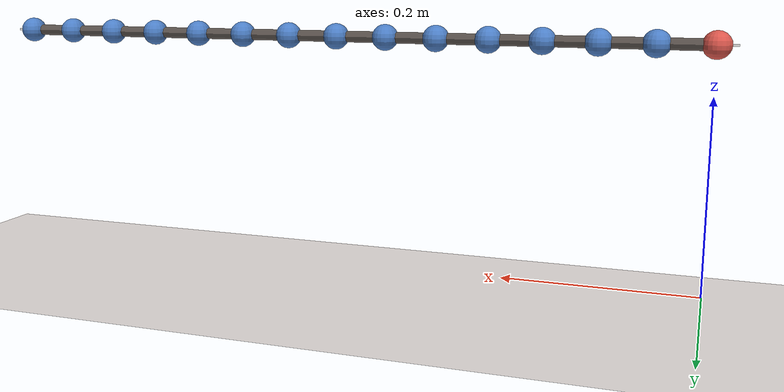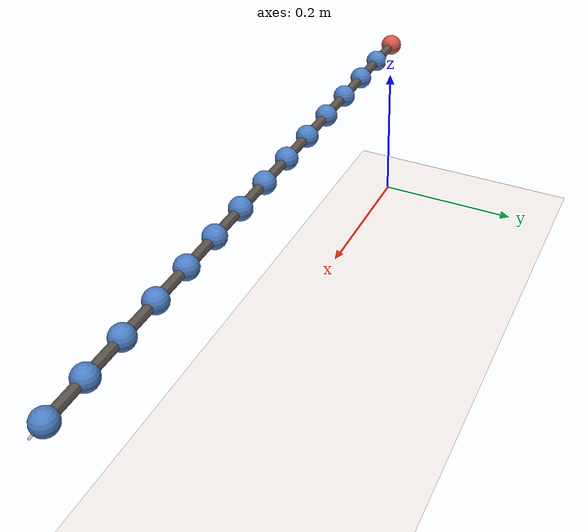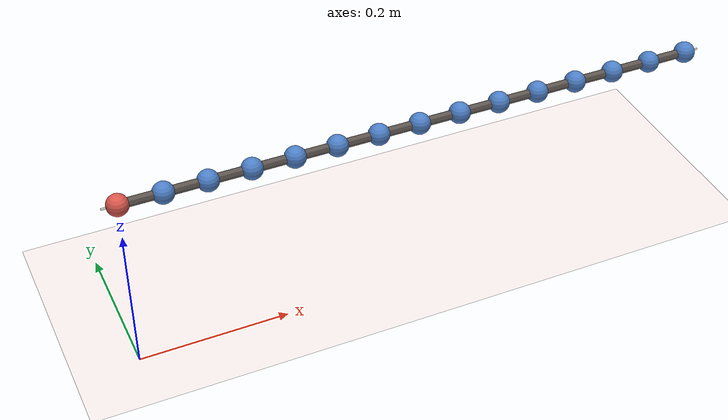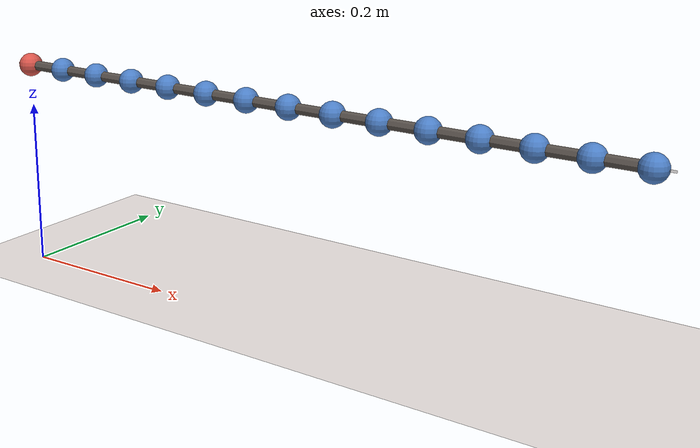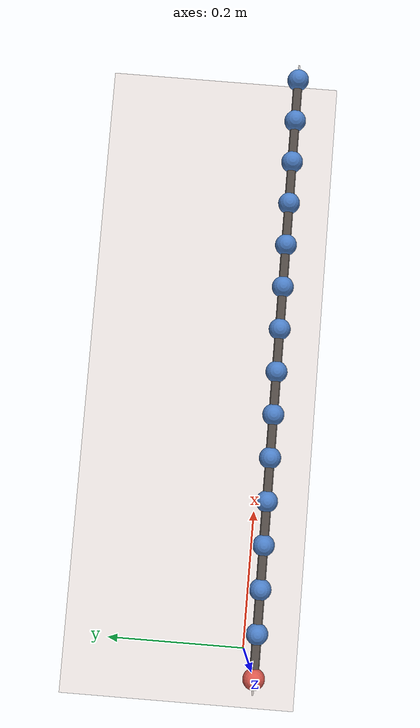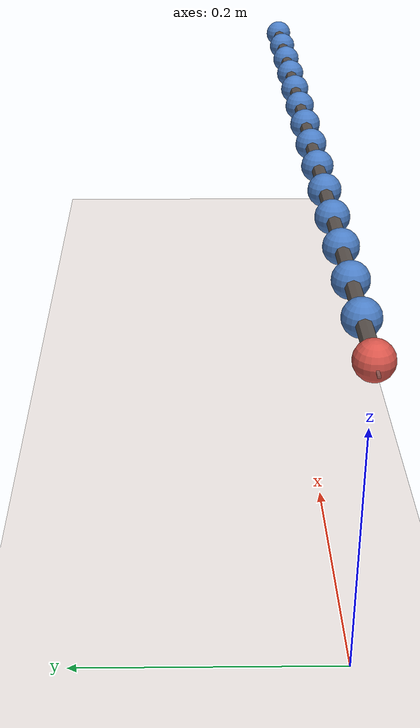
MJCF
<mujoco model="wave_on_chain_pulse">
  <!-- 15-mass transverse chain; pulse on m0 via --init-qpos. -->
  <compiler angle="radian" coordinate="local" autolimits="true"/>
  <option timestep="0.001" gravity="0 0 0" integrator="implicitfast"/>

  <visual>
    <headlight diffuse="0 0 0" ambient="0.50 0.48 0.55" specular="0 0 0"/>
    <rgba haze="0.94 0.91 0.90 1"/>
    <global azimuth="120" elevation="-15" offwidth="1920" offheight="1080" fovy="38"/>
    <quality shadowsize="8192" offsamples="8"/>
    <map shadowclip="6" shadowscale="0.7"/>
  </visual>

  <asset>
    <texture type="skybox" builtin="flat"
             rgb1="0.74 0.68 0.86" rgb2="0.74 0.68 0.86"
             width="512" height="512" mark="none" markrgb="0 0 0"/>
    <material name="floor_mat" rgba="0.94 0.91 0.90 1" specular="0" shininess="0"/>
    <material name="bob_red" rgba="0.86 0.34 0.30 1" specular="0.35" shininess="0.4"/>
    <material name="bob_blue" rgba="0.30 0.50 0.78 1" specular="0.35" shininess="0.4"/>
    <material name="ref_line" rgba="0.55 0.52 0.50 0.45" specular="0" shininess="0"/>
  </asset>

  <worldbody>
    <light pos="0 0 12" dir="-0.30 0.55 -1" directional="true" castshadow="true"
           diffuse="0.85 0.82 0.78" specular="0.15 0.15 0.15"/>
    <light pos="0 0 8" dir="0.40 -0.30 -1" directional="true" castshadow="false"
           diffuse="0.28 0.28 0.34" specular="0 0 0"/>

    <geom name="floor" type="plane" size="40 40 0.1" material="floor_mat"
          contype="0" conaffinity="0"/>

    <!-- Equilibrium height z = 0.25 (visual only). -->
    <geom name="eq_line" type="box" size="0.4050 0.001 0.001"
          pos="0.3850 0 0.2500" material="ref_line"
          contype="0" conaffinity="0"/>

    <body name="m0" pos="0.0000 0 0.2500">
      <joint name="z0" type="slide" axis="0 0 1"
             stiffness="0" damping="0.1" range="-0.10 0.10"/>
      <geom type="sphere" size="0.014" mass="0.02" material="bob_red"
            contype="0" conaffinity="0"/>
      <site name="s0" pos="0 0 0" size="0.001"/>
    </body>
    <body name="m1" pos="0.0550 0 0.2500">
      <joint name="z1" type="slide" axis="0 0 1"
             stiffness="0" damping="0.1" range="-0.10 0.10"/>
      <geom type="sphere" size="0.014" mass="0.02" material="bob_blue"
            contype="0" conaffinity="0"/>
      <site name="s1" pos="0 0 0" size="0.001"/>
    </body>
    <body name="m2" pos="0.1100 0 0.2500">
      <joint name="z2" type="slide" axis="0 0 1"
             stiffness="0" damping="0.1" range="-0.10 0.10"/>
      <geom type="sphere" size="0.014" mass="0.02" material="bob_blue"
            contype="0" conaffinity="0"/>
      <site name="s2" pos="0 0 0" size="0.001"/>
    </body>
    <body name="m3" pos="0.1650 0 0.2500">
      <joint name="z3" type="slide" axis="0 0 1"
             stiffness="0" damping="0.1" range="-0.10 0.10"/>
      <geom type="sphere" size="0.014" mass="0.02" material="bob_blue"
            contype="0" conaffinity="0"/>
      <site name="s3" pos="0 0 0" size="0.001"/>
    </body>
    <body name="m4" pos="0.2200 0 0.2500">
      <joint name="z4" type="slide" axis="0 0 1"
             stiffness="0" damping="0.1" range="-0.10 0.10"/>
      <geom type="sphere" size="0.014" mass="0.02" material="bob_blue"
            contype="0" conaffinity="0"/>
      <site name="s4" pos="0 0 0" size="0.001"/>
    </body>
    <body name="m5" pos="0.2750 0 0.2500">
      <joint name="z5" type="slide" axis="0 0 1"
             stiffness="0" damping="0.1" range="-0.10 0.10"/>
      <geom type="sphere" size="0.014" mass="0.02" material="bob_blue"
            contype="0" conaffinity="0"/>
      <site name="s5" pos="0 0 0" size="0.001"/>
    </body>
    <body name="m6" pos="0.3300 0 0.2500">
      <joint name="z6" type="slide" axis="0 0 1"
             stiffness="0" damping="0.1" range="-0.10 0.10"/>
      <geom type="sphere" size="0.014" mass="0.02" material="bob_blue"
            contype="0" conaffinity="0"/>
      <site name="s6" pos="0 0 0" size="0.001"/>
    </body>
    <body name="m7" pos="0.3850 0 0.2500">
      <joint name="z7" type="slide" axis="0 0 1"
             stiffness="0" damping="0.1" range="-0.10 0.10"/>
      <geom type="sphere" size="0.014" mass="0.02" material="bob_blue"
            contype="0" conaffinity="0"/>
      <site name="s7" pos="0 0 0" size="0.001"/>
    </body>
    <body name="m8" pos="0.4400 0 0.2500">
      <joint name="z8" type="slide" axis="0 0 1"
             stiffness="0" damping="0.1" range="-0.10 0.10"/>
      <geom type="sphere" size="0.014" mass="0.02" material="bob_blue"
            contype="0" conaffinity="0"/>
      <site name="s8" pos="0 0 0" size="0.001"/>
    </body>
    <body name="m9" pos="0.4950 0 0.2500">
      <joint name="z9" type="slide" axis="0 0 1"
             stiffness="0" damping="0.1" range="-0.10 0.10"/>
      <geom type="sphere" size="0.014" mass="0.02" material="bob_blue"
            contype="0" conaffinity="0"/>
      <site name="s9" pos="0 0 0" size="0.001"/>
    </body>
    <body name="m10" pos="0.5500 0 0.2500">
      <joint name="z10" type="slide" axis="0 0 1"
             stiffness="0" damping="0.1" range="-0.10 0.10"/>
      <geom type="sphere" size="0.014" mass="0.02" material="bob_blue"
            contype="0" conaffinity="0"/>
      <site name="s10" pos="0 0 0" size="0.001"/>
    </body>
    <body name="m11" pos="0.6050 0 0.2500">
      <joint name="z11" type="slide" axis="0 0 1"
             stiffness="0" damping="0.1" range="-0.10 0.10"/>
      <geom type="sphere" size="0.014" mass="0.02" material="bob_blue"
            contype="0" conaffinity="0"/>
      <site name="s11" pos="0 0 0" size="0.001"/>
    </body>
    <body name="m12" pos="0.6600 0 0.2500">
      <joint name="z12" type="slide" axis="0 0 1"
             stiffness="0" damping="0.1" range="-0.10 0.10"/>
      <geom type="sphere" size="0.014" mass="0.02" material="bob_blue"
            contype="0" conaffinity="0"/>
      <site name="s12" pos="0 0 0" size="0.001"/>
    </body>
    <body name="m13" pos="0.7150 0 0.2500">
      <joint name="z13" type="slide" axis="0 0 1"
             stiffness="0" damping="0.1" range="-0.10 0.10"/>
      <geom type="sphere" size="0.014" mass="0.02" material="bob_blue"
            contype="0" conaffinity="0"/>
      <site name="s13" pos="0 0 0" size="0.001"/>
    </body>
    <body name="m14" pos="0.7700 0 0.2500">
      <joint name="z14" type="slide" axis="0 0 1"
             stiffness="0" damping="0.1" range="-0.10 0.10"/>
      <geom type="sphere" size="0.014" mass="0.02" material="bob_blue"
            contype="0" conaffinity="0"/>
      <site name="s14" pos="0 0 0" size="0.001"/>
    </body>

    <camera name="cam" pos="0.38 -1.00 0.28"
            fovy="34" xyaxes="1.0000 -0.0000 0.0000   0.0000 0.0300 0.9996"/>
  </worldbody>

  <tendon>
    <spatial name="link0" stiffness="220.0" damping="1.0"
             springlength="0.05500" width="0.006"
             rgba="0.35 0.32 0.30 0.90" limited="false">
      <site site="s0"/>
      <site site="s1"/>
    </spatial>
    <spatial name="link1" stiffness="220.0" damping="1.0"
             springlength="0.05500" width="0.006"
             rgba="0.35 0.32 0.30 0.90" limited="false">
      <site site="s1"/>
      <site site="s2"/>
    </spatial>
    <spatial name="link2" stiffness="220.0" damping="1.0"
             springlength="0.05500" width="0.006"
             rgba="0.35 0.32 0.30 0.90" limited="false">
      <site site="s2"/>
      <site site="s3"/>
    </spatial>
    <spatial name="link3" stiffness="220.0" damping="1.0"
             springlength="0.05500" width="0.006"
             rgba="0.35 0.32 0.30 0.90" limited="false">
      <site site="s3"/>
      <site site="s4"/>
    </spatial>
    <spatial name="link4" stiffness="220.0" damping="1.0"
             springlength="0.05500" width="0.006"
             rgba="0.35 0.32 0.30 0.90" limited="false">
      <site site="s4"/>
      <site site="s5"/>
    </spatial>
    <spatial name="link5" stiffness="220.0" damping="1.0"
             springlength="0.05500" width="0.006"
             rgba="0.35 0.32 0.30 0.90" limited="false">
      <site site="s5"/>
      <site site="s6"/>
    </spatial>
    <spatial name="link6" stiffness="220.0" damping="1.0"
             springlength="0.05500" width="0.006"
             rgba="0.35 0.32 0.30 0.90" limited="false">
      <site site="s6"/>
      <site site="s7"/>
    </spatial>
    <spatial name="link7" stiffness="220.0" damping="1.0"
             springlength="0.05500" width="0.006"
             rgba="0.35 0.32 0.30 0.90" limited="false">
      <site site="s7"/>
      <site site="s8"/>
    </spatial>
    <spatial name="link8" stiffness="220.0" damping="1.0"
             springlength="0.05500" width="0.006"
             rgba="0.35 0.32 0.30 0.90" limited="false">
      <site site="s8"/>
      <site site="s9"/>
    </spatial>
    <spatial name="link9" stiffness="220.0" damping="1.0"
             springlength="0.05500" width="0.006"
             rgba="0.35 0.32 0.30 0.90" limited="false">
      <site site="s9"/>
      <site site="s10"/>
    </spatial>
    <spatial name="link10" stiffness="220.0" damping="1.0"
             springlength="0.05500" width="0.006"
             rgba="0.35 0.32 0.30 0.90" limited="false">
      <site site="s10"/>
      <site site="s11"/>
    </spatial>
    <spatial name="link11" stiffness="220.0" damping="1.0"
             springlength="0.05500" width="0.006"
             rgba="0.35 0.32 0.30 0.90" limited="false">
      <site site="s11"/>
      <site site="s12"/>
    </spatial>
    <spatial name="link12" stiffness="220.0" damping="1.0"
             springlength="0.05500" width="0.006"
             rgba="0.35 0.32 0.30 0.90" limited="false">
      <site site="s12"/>
      <site site="s13"/>
    </spatial>
    <spatial name="link13" stiffness="220.0" damping="1.0"
             springlength="0.05500" width="0.006"
             rgba="0.35 0.32 0.30 0.90" limited="false">
      <site site="s13"/>
      <site site="s14"/>
    </spatial>
  </tendon>
</mujoco>
